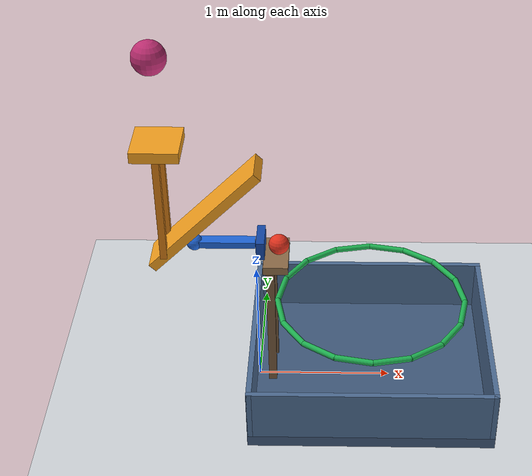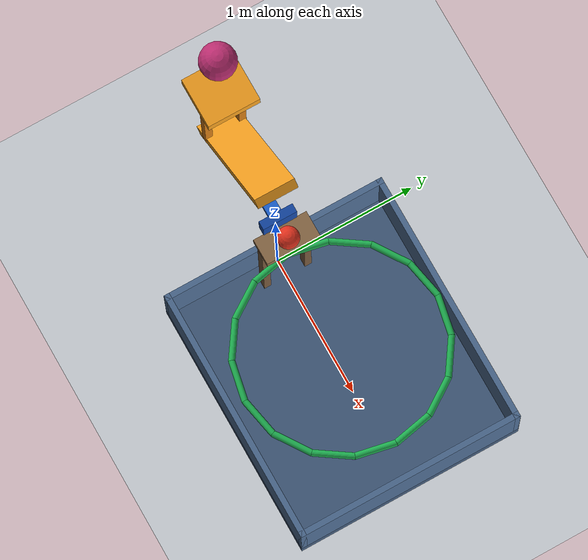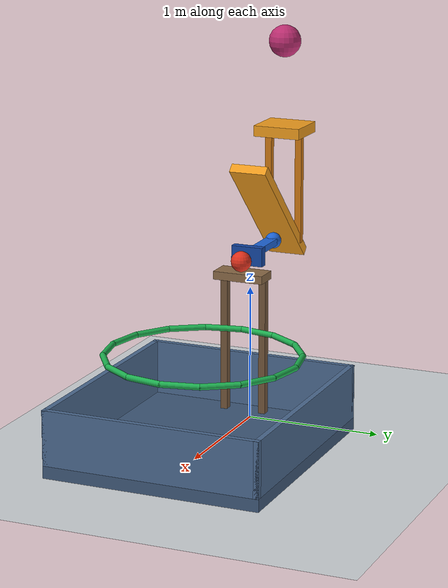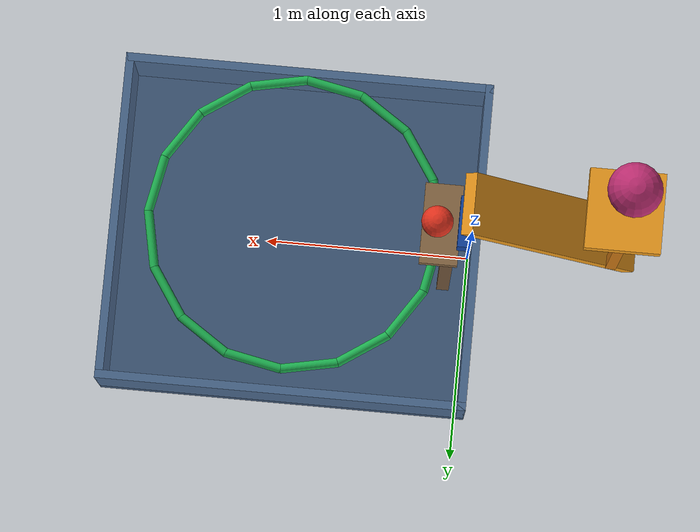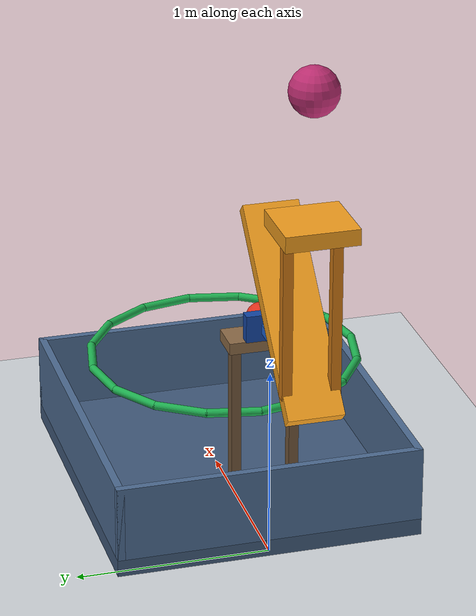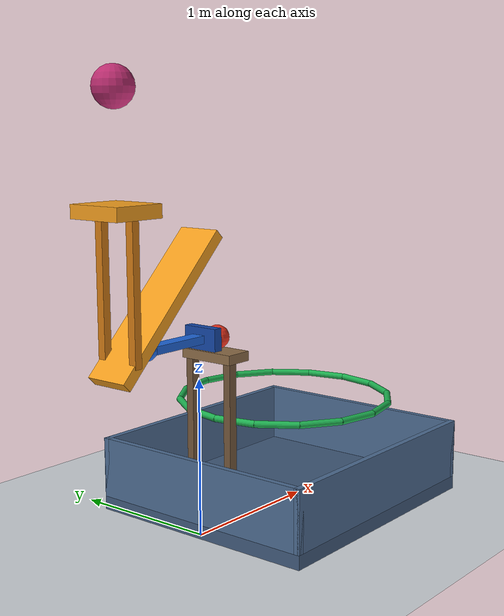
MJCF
<mujoco model="trigger_wedge_cart_drop">
  <compiler angle="radian"/>
  <option timestep="0.002" gravity="0 0 -9.81" integrator="implicitfast" iterations="80"/>
  <size njmax="2000" nconmax="300"/>

  <visual>
    <global azimuth="135" elevation="-20"/>
    <headlight ambient="0.35 0.35 0.35" diffuse="0.65 0.65 0.65" specular="0.15 0.15 0.15"/>
  </visual>

  <worldbody>
    <light name="overhead" pos="0.5 -2 4" dir="0 0.3 -1" diffuse="0.8 0.8 0.8"/>
    <camera name="overview" pos="3.5 -5 3.2" xyaxes="0.83 0.56 0 -0.23 0.34 0.91"/>

    <geom name="floor" type="plane" size="5 5 0.1" rgba="0.82 0.84 0.86 1" friction="0.9 0.01 0.003" condim="6"/>

    <!-- The trigger's bottom starts exactly 0.5 m above the wedge cap. -->
    <body name="trigger" pos="-0.65 0 2.72">
      <freejoint name="trigger_free"/>
      <geom name="trigger_ball" type="sphere" size="0.12" mass="6" rgba="0.75 0.18 0.45 1" friction="0.8 0.01 0.003" condim="6" solref="0.006 1"/>
    </body>

    <!-- Gravity compensation holds the unloaded wedge at its starting height. -->
    <body name="wedge" pos="-0.35 0 1.5" gravcomp="1">
      <joint name="wedge_slide" type="slide" axis="0 0 -1" limited="true" range="0 0.32" stiffness="140" springref="0" damping="60" armature="0.02" solreflimit="0.006 1"/>
      <geom name="wedge_ramp" type="box" size="0.55 0.14 0.035" quat="0.923879533 0 -0.382683432 0" mass="1.2" rgba="0.95 0.62 0.12 1" friction="0.05 0.002 0.001" solref="0.006 1"/>
      <geom name="wedge_cap" type="box" pos="-0.3 0 0.56" size="0.17 0.18 0.04" mass="0.6" rgba="0.95 0.62 0.12 1" friction="0.8 0.01 0.003" solref="0.006 1"/>
      <geom name="wedge_post_left" type="box" pos="-0.3 -0.12 0.11" size="0.025 0.025 0.41" mass="0.15" rgba="0.82 0.48 0.08 1"/>
      <geom name="wedge_post_right" type="box" pos="-0.3 0.12 0.11" size="0.025 0.025 0.41" mass="0.15" rgba="0.82 0.48 0.08 1"/>
    </body>

    <!-- The descending ramp presses this follower to the right. -->
    <body name="cart" pos="-0.44 0 1.25">
      <joint name="cart_slide" type="slide" axis="1 0 0" limited="true" range="0 0.38" damping="14" frictionloss="0.5" armature="0.01" solreflimit="0.006 1"/>
      <geom name="cart_follower" type="sphere" size="0.06" mass="0.5" rgba="0.12 0.4 0.85 1" friction="0.05 0.002 0.001" solref="0.006 1"/>
      <geom name="cart_beam" type="box" pos="0.22 0 0" size="0.22 0.045 0.025" mass="1" rgba="0.12 0.4 0.85 1" friction="0.2 0.005 0.001"/>
      <geom name="cart_striker" type="box" pos="0.48 0 0" size="0.03 0.12 0.07" mass="0.5" rgba="0.08 0.28 0.65 1" friction="0.2 0.005 0.001" solref="0.006 1"/>
    </body>

    <body name="block" pos="0.17 0 1.235">
      <freejoint name="block_free"/>
      <geom name="block_ball" type="sphere" size="0.075" mass="0.25" rgba="0.9 0.2 0.12 1" friction="0.75 0.005 0.003" condim="6" solref="0.006 1"/>
    </body>

    <body name="ledge" pos="0 0 0">
      <geom name="ledge_deck" type="box" pos="0.15 0 1.13" size="0.09 0.19 0.03" rgba="0.55 0.42 0.28 1" friction="0.6 0.005 0.001" solref="0.006 1"/>
      <geom name="ledge_leg_left" type="box" pos="0.11 -0.15 0.55" size="0.03 0.025 0.55" rgba="0.45 0.34 0.23 1"/>
      <geom name="ledge_leg_right" type="box" pos="0.11 0.15 0.55" size="0.03 0.025 0.55" rgba="0.45 0.34 0.23 1"/>
    </body>

    <!-- A horizontal, sixteen-segment circular hoop. -->
    <body name="hoop" pos="0.85 0 0.72">
      <geom name="hoop_01" type="capsule" fromto="0.7 0 0 0.646716 0.267878 0" size="0.022" rgba="0.12 0.7 0.32 1"/>
      <geom name="hoop_02" type="capsule" fromto="0.646716 0.267878 0 0.494975 0.494975 0" size="0.022" rgba="0.12 0.7 0.32 1"/>
      <geom name="hoop_03" type="capsule" fromto="0.494975 0.494975 0 0.267878 0.646716 0" size="0.022" rgba="0.12 0.7 0.32 1"/>
      <geom name="hoop_04" type="capsule" fromto="0.267878 0.646716 0 0 0.7 0" size="0.022" rgba="0.12 0.7 0.32 1"/>
      <geom name="hoop_05" type="capsule" fromto="0 0.7 0 -0.267878 0.646716 0" size="0.022" rgba="0.12 0.7 0.32 1"/>
      <geom name="hoop_06" type="capsule" fromto="-0.267878 0.646716 0 -0.494975 0.494975 0" size="0.022" rgba="0.12 0.7 0.32 1"/>
      <geom name="hoop_07" type="capsule" fromto="-0.494975 0.494975 0 -0.646716 0.267878 0" size="0.022" rgba="0.12 0.7 0.32 1"/>
      <geom name="hoop_08" type="capsule" fromto="-0.646716 0.267878 0 -0.7 0 0" size="0.022" rgba="0.12 0.7 0.32 1"/>
      <geom name="hoop_09" type="capsule" fromto="-0.7 0 0 -0.646716 -0.267878 0" size="0.022" rgba="0.12 0.7 0.32 1"/>
      <geom name="hoop_10" type="capsule" fromto="-0.646716 -0.267878 0 -0.494975 -0.494975 0" size="0.022" rgba="0.12 0.7 0.32 1"/>
      <geom name="hoop_11" type="capsule" fromto="-0.494975 -0.494975 0 -0.267878 -0.646716 0" size="0.022" rgba="0.12 0.7 0.32 1"/>
      <geom name="hoop_12" type="capsule" fromto="-0.267878 -0.646716 0 0 -0.7 0" size="0.022" rgba="0.12 0.7 0.32 1"/>
      <geom name="hoop_13" type="capsule" fromto="0 -0.7 0 0.267878 -0.646716 0" size="0.022" rgba="0.12 0.7 0.32 1"/>
      <geom name="hoop_14" type="capsule" fromto="0.267878 -0.646716 0 0.494975 -0.494975 0" size="0.022" rgba="0.12 0.7 0.32 1"/>
      <geom name="hoop_15" type="capsule" fromto="0.494975 -0.494975 0 0.646716 -0.267878 0" size="0.022" rgba="0.12 0.7 0.32 1"/>
      <geom name="hoop_16" type="capsule" fromto="0.646716 -0.267878 0 0.7 0 0" size="0.022" rgba="0.12 0.7 0.32 1"/>
    </body>

    <body name="box" pos="0.85 0 0">
      <geom name="box_bottom" type="box" pos="0 0 0.045" size="0.9 0.8 0.045" rgba="0.25 0.35 0.48 1" friction="0.9 0.01 0.003" condim="6" solref="0.006 1"/>
      <geom name="box_wall_left" type="box" pos="-0.88 0 0.29" size="0.02 0.8 0.2" rgba="0.3 0.42 0.57 1" friction="0.9 0.01 0.003" condim="6" solref="0.006 1"/>
      <geom name="box_wall_right" type="box" pos="0.88 0 0.29" size="0.02 0.8 0.2" rgba="0.3 0.42 0.57 1" friction="0.9 0.01 0.003" condim="6" solref="0.006 1"/>
      <geom name="box_wall_front" type="box" pos="0 -0.78 0.29" size="0.9 0.02 0.2" rgba="0.3 0.42 0.57 1" friction="0.9 0.01 0.003" condim="6" solref="0.006 1"/>
      <geom name="box_wall_back" type="box" pos="0 0.78 0.29" size="0.9 0.02 0.2" rgba="0.3 0.42 0.57 1" friction="0.9 0.01 0.003" condim="6" solref="0.006 1"/>
    </body>
  </worldbody>

  <keyframe>
    <key name="start" qpos="-0.65 0 2.72 1 0 0 0 0 0 0.17 0 1.235 1 0 0 0" qvel="0 0 0 0 0 0 0 0 0 0 0 0 0 0"/>
  </keyframe>
</mujoco>
